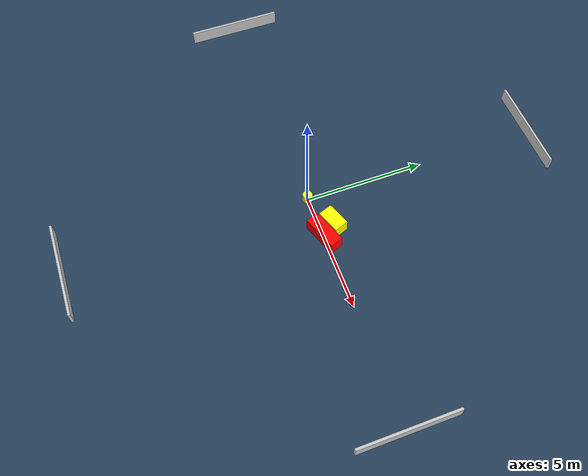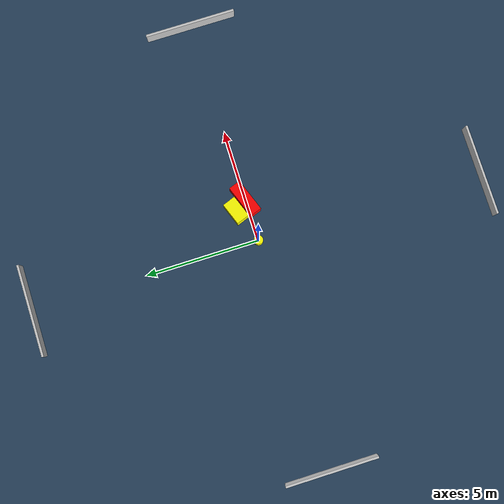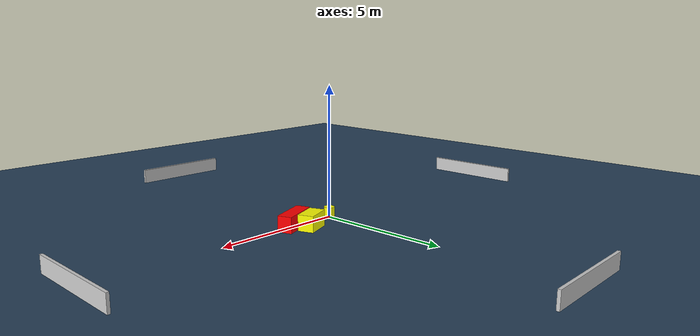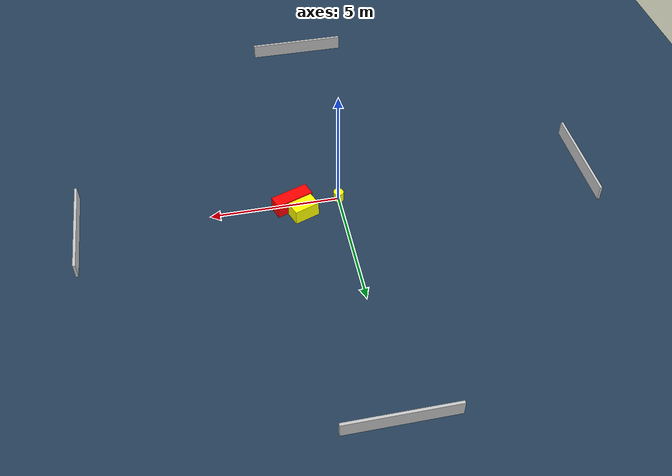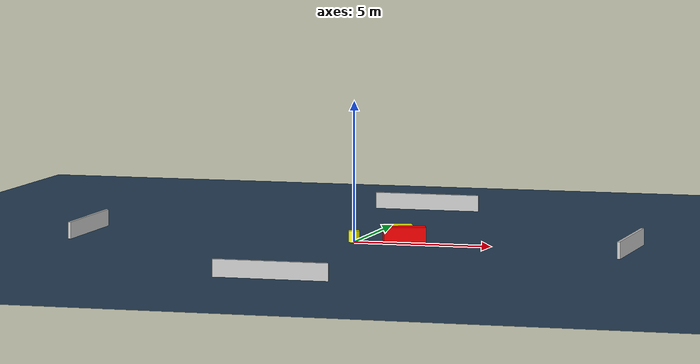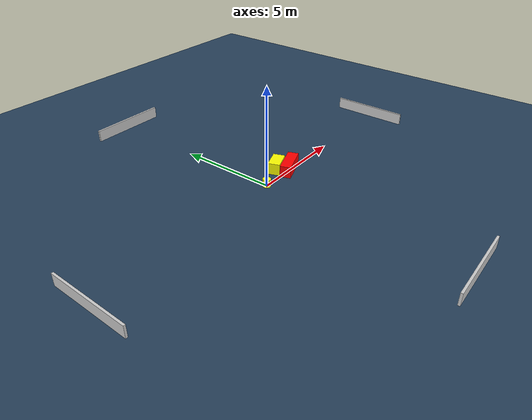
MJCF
<?xml version="1.0" ?>
<mujoco model="generated_environment">
  <option timestep="0.01" integrator="RK4" cone="elliptic"/>
  <default>
    <geom density="1"/>
  </default>
  <asset>
    <texture builtin="gradient" height="3072" name="skybox" rgb1="0.3 0.5 0.7" rgb2="0 0 0" type="skybox" width="512"/>
    <texture builtin="checker" height="300" name="groundplane" rgb1="0.2 0.3 0.4" rgb2="0.1 0.2 0.3" type="2d" width="300"/>
    <material name="groundplane" reflectance="0.2" texrepeat="5 5" texture="groundplane"/>
  </asset>
  <worldbody>
    <light dir="0 0 -1" directional="true" pos="0 0 1.5"/>
    <geom condim="3" friction="0.5 0.005 0.001" material="groundplane" name="floor" pos="0 0 0" size="0 0 0.05" type="plane"/>
    <body name="walls">
      <geom name="wall_1" condim="4" pos="-10.0 0.0 0.3" rgba="0.800000011920929 0.800000011920929 0.800000011920929 1.0" size="0.05 2.0 0.3" type="box"/>
      <geom name="wall_2" condim="4" pos="10.0 0.0 0.3" rgba="0.800000011920929 0.800000011920929 0.800000011920929 1.0" size="0.05 2.0 0.3" type="box"/>
      <geom name="wall_3" condim="4" pos="0.0 -10.0 0.3" rgba="0.800000011920929 0.800000011920929 0.800000011920929 1.0" size="2.0 0.05 0.3" type="box"/>
      <geom name="wall_4" condim="4" pos="0.0 10.0 0.3" rgba="0.800000011920929 0.800000011920929 0.800000011920929 1.0" size="2.0 0.05 0.3" type="box"/>
    </body>
    <body name="robot">
      <joint name="joint_x" type="slide" pos="0 0 0" axis="1 0 0"/>
      <joint name="joint_y" type="slide" pos="0 0 0" axis="0 1 0"/>
      <geom name="robot" type="cylinder" pos="0.0 0.0 0.2" size="0.2 0.2 0.0" mass="5.0" friction="1.0 0.005 0.0001" condim="4" rgba="1.0 1.0 0.0 1.0"/>
    </body>
    <body name="obstacle_1_movable">
      <geom name="obstacle_1_movable" condim="4" pos="1.473118852429626 0.5413759525129915 0.3" euler="0 0 20.416289773781866" friction="0.0 0.005 0.001" rgba="1.0 1.0 0.0 1.0" size="0.49955894347522856 0.29733164586640093 0.3" type="box" mass="0.1"/>
      <joint type="free"/>
    </body>
    <body name="obstacle_2_static">
      <geom name="obstacle_2_static" condim="4" pos="1.8396617694161155 0.022521057409081148 0.3" euler="0 0 200.24960460953284" friction="0.0 0.005 0.001" rgba="1.0 0.0 0.0 1.0" size="0.7472346020924361 0.2699986899552377 0.3" type="box"/>
    </body>
  </worldbody>
  <actuator>
    <motor name="actuator_x" joint="joint_x" gear="1" ctrlrange="-1 1"/>
    <motor name="actuator_y" joint="joint_y" gear="1" ctrlrange="-1 1"/>
  </actuator>
</mujoco>
